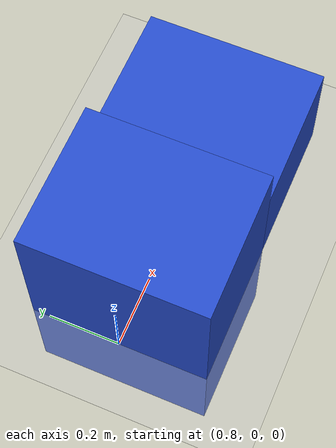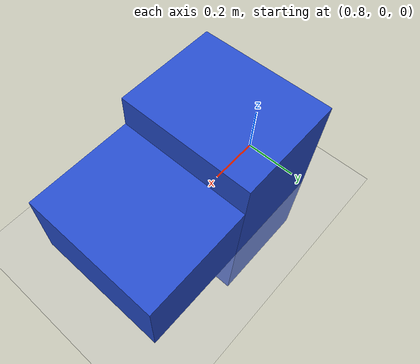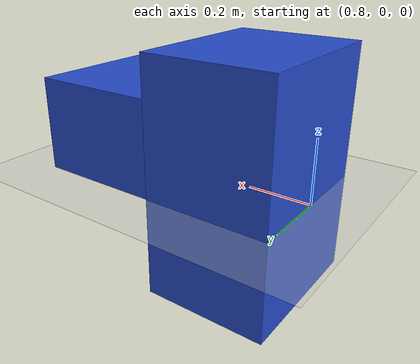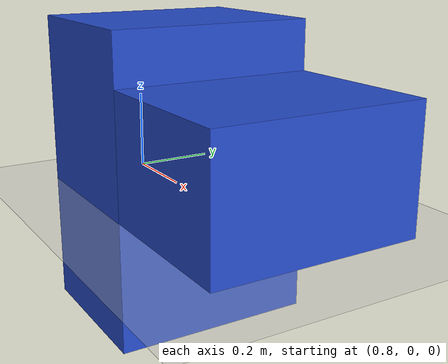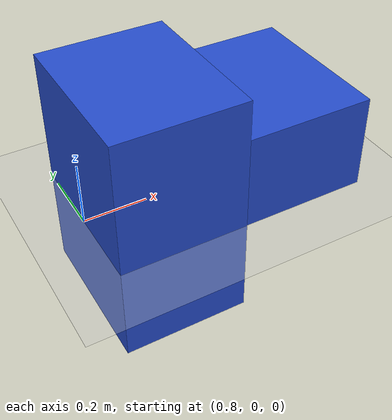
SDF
<?xml version="1.0" ?>
<sdf version="1.4">
    <world name="default">
        <physics type="ode">
            <gravity>0 0 -9.81</gravity>
            <ode>
                <solver>
                    <type>quick</type>
                    <iters>50</iters>
                    <sor>1.4</sor>
                </solver>
                <constraints>
                    <cfm>0.0</cfm>
                    <erp>0.2</erp>
                    <contact_max_correcting_vel>100.0</contact_max_correcting_vel>
                    <contact_surface_layer>0.0</contact_surface_layer>
                </constraints>
            </ode>
            <real_time_update_rate>1000</real_time_update_rate>
            <max_step_size>0.001</max_step_size>
        </physics>
        <!-- A global light source -->
        <include>
            <uri>model://sun</uri>
        </include>
        <!-- A ground plane -->
        <include>
            <uri>model://ground_plane</uri>
        </include>
        <model name="rectangle_1">
            <pose>1.0 0.0 0.05 0.0 0.0 0.0</pose>
            <static>true</static>
            <link name="rectangle_1_body">
                <inertial>
                    <mass>1.0</mass>
                    <inertia>
                        <ixx>1.0</ixx>
                        <ixy>0.0</ixy>
                        <ixz>0.0</ixz>
                        <iyy>1.0</iyy>
                        <iyz>0.0</iyz>
                        <izz>1.0</izz>
                    </inertia>
                </inertial>
                <collision name="collision">
                    <geometry>
                        <box>
                            <size>0.4 0.5 0.75</size>
                        </box>
                    </geometry>
                    <surface>
                        <friction>
                            <ode>
                                <mu>0.9</mu>
                                <mu2>0.9</mu2>
                            </ode>
                        </friction>
                    </surface>
                </collision>
                <visual name="visual">
                    <geometry>
                        <box>
                            <size>0.4 0.5 0.75</size>
                        </box>
                    </geometry>
                    <material>
                        <script>
                            <uri>file://media/materials/scripts/gazebo.material</uri>
                            <name>Gazebo/Blue</name>
                        </script>
                    </material>
                </visual>
            </link>
        </model>
        <model name="rectangle_2">
            <pose>1.4 0.0 0.15 0.0 0.0 0.0</pose>
            <static>true</static>
            <link name="rectangle_2_body">
                <inertial>
                    <mass>1.0</mass>
                    <inertia>
                        <ixx>1.0</ixx>
                        <ixy>0.0</ixy>
                        <ixz>0.0</ixz>
                        <iyy>1.0</iyy>
                        <iyz>0.0</iyz>
                        <izz>1.0</izz>
                    </inertia>
                </inertial>
                <collision name="collision">
                    <geometry>
                        <box>
                            <size>0.4 0.5 0.3</size>
                        </box>
                    </geometry>
                    <surface>
                        <friction>
                            <ode>
                                <mu>0.9</mu>
                                <mu2>0.9</mu2>
                            </ode>
                        </friction>
                    </surface>
                </collision>
                <visual name="visual">
                    <geometry>
                        <box>
                            <size>0.4 0.5 0.3</size>
                        </box>
                    </geometry>
                    <material>
                        <script>
                            <uri>file://media/materials/scripts/gazebo.material</uri>
                            <name>Gazebo/Blue</name>
                        </script>
                    </material>
                </visual>
            </link>
        </model>
    </world>
</sdf>
